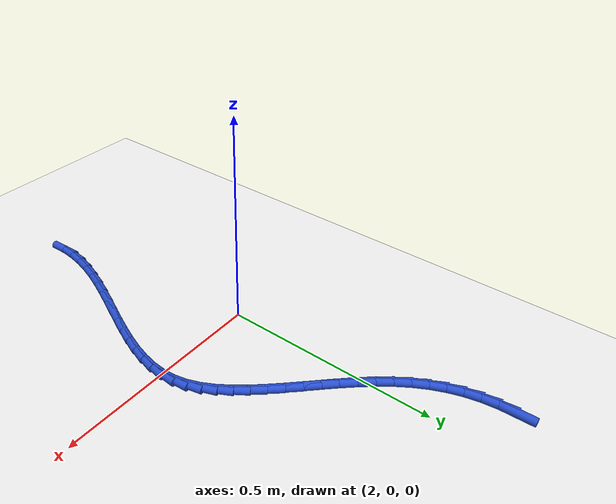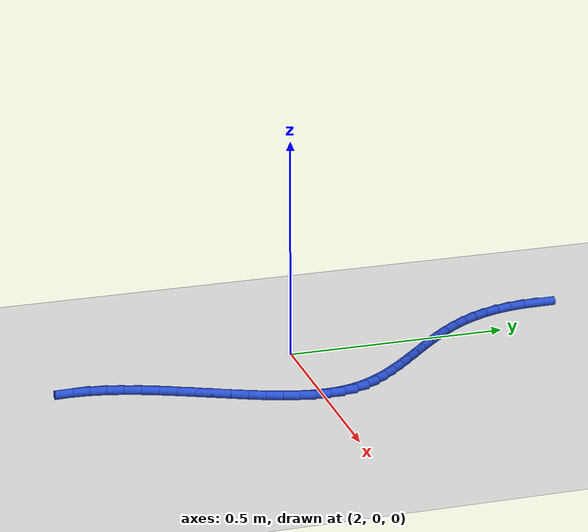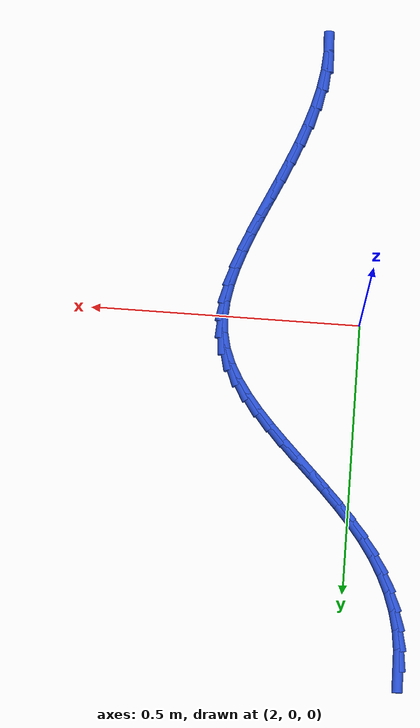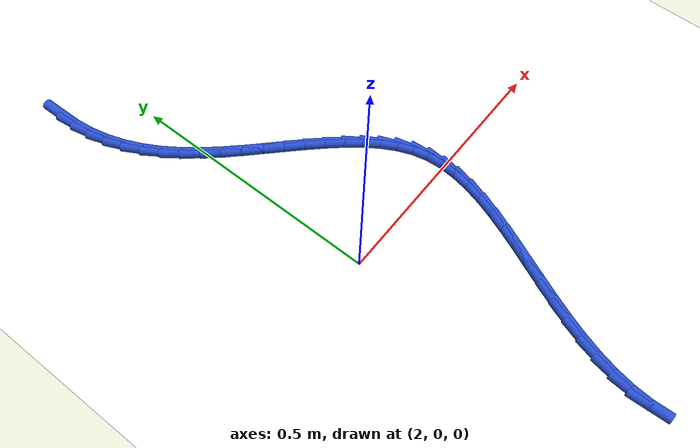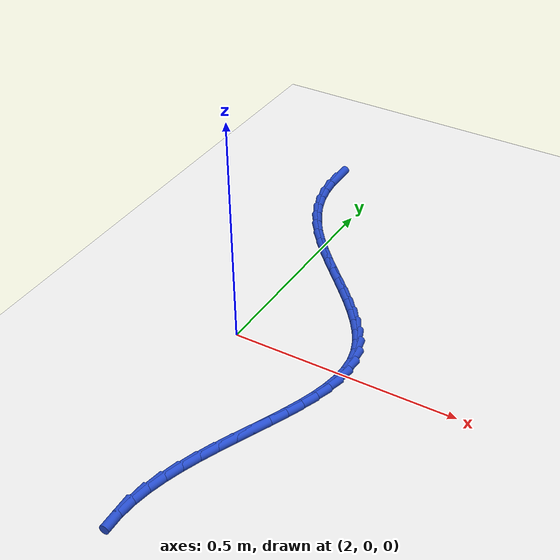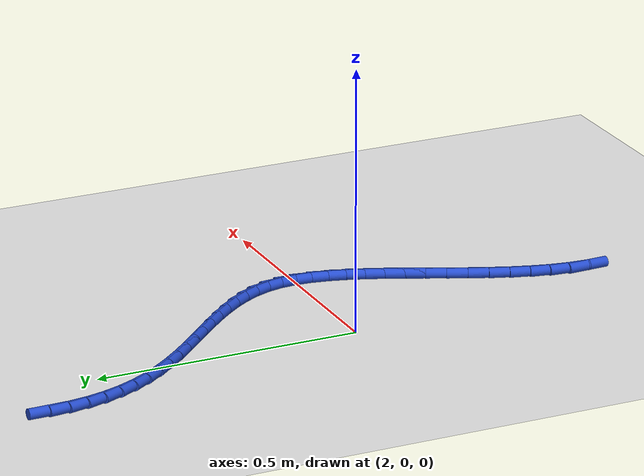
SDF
<sdf version="1.6">
 <world name="default">
  <model name="ground_plane">
   <static>1</static>
   <link name="link">
    <collision name="collision">
     <geometry><plane><normal>0 0 1</normal><size>100 100</size></plane></geometry>
     <surface><friction><ode><mu>100</mu><mu2>50</mu2></ode></friction></surface>
    </collision>
    <visual name="visual">
     <cast_shadows>0</cast_shadows>
     <geometry><plane><normal>0 0 1</normal><size>100 100</size></plane></geometry>
     <material>
      <script><uri>file://media/materials/scripts/gazebo.material</uri><name>Gazebo/WhiteGlow</name></script>
     </material>
    </visual>
   </link>
  </model>
  <model name="line">
   <link name="link_94">
    <pose>1.8905877723139377 0.6322165702435564 0.01 0 1.57 -1.5479605333272455</pose>
    <collision name="collision">
     <geometry><cylinder><radius>0.01</radius><length>0.08</length></cylinder></geometry>
    </collision>
    <visual name="visual">
     <material>
      <script><name>Gazebo/Blue</name><uri>file://media/materials/scripts/gazebo.material</uri></script>
     </material>
     <geometry><cylinder><radius>0.01</radius><length>0.08</length></cylinder></geometry>
    </visual>
   </link>
   <link name="link_95">
    <pose>1.891432547540415 0.5952295314551933 0.01 0 1.57 -1.4419908986044163</pose>
    <collision name="collision">
     <geometry><cylinder><radius>0.01</radius><length>0.08</length></cylinder></geometry>
    </collision>
    <visual name="visual">
     <material>
      <script><name>Gazebo/Blue</name><uri>file://media/materials/scripts/gazebo.material</uri></script>
     </material>
     <geometry><cylinder><radius>0.01</radius><length>0.08</length></cylinder></geometry>
    </visual>
   </link>
   <link name="link_96">
    <pose>1.896062959654958 0.5594796695264206 0.01 0 1.57 -1.337098558686547</pose>
    <collision name="collision">
     <geometry><cylinder><radius>0.01</radius><length>0.08</length></cylinder></geometry>
    </collision>
    <visual name="visual">
     <material>
      <script><name>Gazebo/Blue</name><uri>file://media/materials/scripts/gazebo.material</uri></script>
     </material>
     <geometry><cylinder><radius>0.01</radius><length>0.08</length></cylinder></geometry>
    </visual>
   </link>
   <link name="link_97">
    <pose>1.9042903463125511 0.5249176798036582 0.01 0 1.57 -1.2357883247975958</pose>
    <collision name="collision">
     <geometry><cylinder><radius>0.01</radius><length>0.08</length></cylinder></geometry>
    </collision>
    <visual name="visual">
     <material>
      <script><name>Gazebo/Blue</name><uri>file://media/materials/scripts/gazebo.material</uri></script>
     </material>
     <geometry><cylinder><radius>0.01</radius><length>0.08</length></cylinder></geometry>
    </visual>
   </link>
   <link name="link_98">
    <pose>1.9159260451681828 0.49149425763332716 0.01 0 1.57 -1.1401264569196978</pose>
    <collision name="collision">
     <geometry><cylinder><radius>0.01</radius><length>0.08</length></cylinder></geometry>
    </collision>
    <visual name="visual">
     <material>
      <script><name>Gazebo/Blue</name><uri>file://media/materials/scripts/gazebo.material</uri></script>
     </material>
     <geometry><cylinder><radius>0.01</radius><length>0.08</length></cylinder></geometry>
    </visual>
   </link>
   <link name="link_99">
    <pose>1.930781393876838 0.45916009836184846 0.01 0 1.57 -1.0515554122687267</pose>
    <collision name="collision">
     <geometry><cylinder><radius>0.01</radius><length>0.08</length></cylinder></geometry>
    </collision>
    <visual name="visual">
     <material>
      <script><name>Gazebo/Blue</name><uri>file://media/materials/scripts/gazebo.material</uri></script>
     </material>
     <geometry><cylinder><radius>0.01</radius><length>0.08</length></cylinder></geometry>
    </visual>
   </link>
   <link name="link_100">
    <pose>1.9486677300935047 0.42786589733564245 0.01 0 1.57 -0.970891354511075</pose>
    <collision name="collision">
     <geometry><cylinder><radius>0.01</radius><length>0.08</length></cylinder></geometry>
    </collision>
    <visual name="visual">
     <material>
      <script><name>Gazebo/Blue</name><uri>file://media/materials/scripts/gazebo.material</uri></script>
     </material>
     <geometry><cylinder><radius>0.01</radius><length>0.08</length></cylinder></geometry>
    </visual>
   </link>
   <link name="link_101">
    <pose>1.9693954280994446 0.3975621262191491 0.01 0 1.57 -0.9015173392978795</pose>
    <collision name="collision">
     <geometry><cylinder><radius>0.01</radius><length>0.08</length></cylinder></geometry>
    </collision>
    <visual name="visual">
     <material>
      <script><name>Gazebo/Blue</name><uri>file://media/materials/scripts/gazebo.material</uri></script>
     </material>
     <geometry><cylinder><radius>0.01</radius><length>0.08</length></cylinder></geometry>
    </visual>
   </link>
   <link name="link_102">
    <pose>1.992647278704343 0.3681696335689657 0.01 0 1.57 -0.8487508781329587</pose>
    <collision name="collision">
     <geometry><cylinder><radius>0.01</radius><length>0.08</length></cylinder></geometry>
    </collision>
    <visual name="visual">
     <material>
      <script><name>Gazebo/Blue</name><uri>file://media/materials/scripts/gazebo.material</uri></script>
     </material>
     <geometry><cylinder><radius>0.01</radius><length>0.08</length></cylinder></geometry>
    </visual>
   </link>
   <link name="link_103">
    <pose>2.017852129335109 0.3395503058197125 0.01 0 1.57 -0.8116921284530113</pose>
    <collision name="collision">
     <geometry><cylinder><radius>0.01</radius><length>0.08</length></cylinder></geometry>
    </collision>
    <visual name="visual">
     <material>
      <script><name>Gazebo/Blue</name><uri>file://media/materials/scripts/gazebo.material</uri></script>
     </material>
     <geometry><cylinder><radius>0.01</radius><length>0.08</length></cylinder></geometry>
    </visual>
   </link>
   <link name="link_104">
    <pose>2.044408772842709 0.31155905115143295 0.01 0 1.57 -0.7890657986596465</pose>
    <collision name="collision">
     <geometry><cylinder><radius>0.01</radius><length>0.08</length></cylinder></geometry>
    </collision>
    <visual name="visual">
     <material>
      <script><name>Gazebo/Blue</name><uri>file://media/materials/scripts/gazebo.material</uri></script>
     </material>
     <geometry><cylinder><radius>0.01</radius><length>0.08</length></cylinder></geometry>
    </visual>
   </link>
   <link name="link_105">
    <pose>2.07171600207811 0.28405077774417214 0.01 0 1.57 -0.7801586065518898</pose>
    <collision name="collision">
     <geometry><cylinder><radius>0.01</radius><length>0.08</length></cylinder></geometry>
    </collision>
    <visual name="visual">
     <material>
      <script><name>Gazebo/Blue</name><uri>file://media/materials/scripts/gazebo.material</uri></script>
     </material>
     <geometry><cylinder><radius>0.01</radius><length>0.08</length></cylinder></geometry>
    </visual>
   </link>
   <link name="link_106">
    <pose>2.0991726098922787 0.25688039377797356 0.01 0 1.57 -0.7848944267379606</pose>
    <collision name="collision">
     <geometry><cylinder><radius>0.01</radius><length>0.08</length></cylinder></geometry>
    </collision>
    <visual name="visual">
     <material>
      <script><name>Gazebo/Blue</name><uri>file://media/materials/scripts/gazebo.material</uri></script>
     </material>
     <geometry><cylinder><radius>0.01</radius><length>0.08</length></cylinder></geometry>
    </visual>
   </link>
   <link name="link_107">
    <pose>2.126177389136183 0.22990280743288236 0.01 0 1.57 -0.8038927824601616</pose>
    <collision name="collision">
     <geometry><cylinder><radius>0.01</radius><length>0.08</length></cylinder></geometry>
    </collision>
    <visual name="visual">
     <material>
      <script><name>Gazebo/Blue</name><uri>file://media/materials/scripts/gazebo.material</uri></script>
     </material>
     <geometry><cylinder><radius>0.01</radius><length>0.08</length></cylinder></geometry>
    </visual>
   </link>
   <link name="link_108">
    <pose>2.1521291326607876 0.20297292688894208 0.01 0 1.57 -0.838534231204406</pose>
    <collision name="collision">
     <geometry><cylinder><radius>0.01</radius><length>0.08</length></cylinder></geometry>
    </collision>
    <visual name="visual">
     <material>
      <script><name>Gazebo/Blue</name><uri>file://media/materials/scripts/gazebo.material</uri></script>
     </material>
     <geometry><cylinder><radius>0.01</radius><length>0.08</length></cylinder></geometry>
    </visual>
   </link>
   <link name="link_109">
    <pose>2.176426633317061 0.1759456603261976 0.01 0 1.57 -0.8910167175887135</pose>
    <collision name="collision">
     <geometry><cylinder><radius>0.01</radius><length>0.08</length></cylinder></geometry>
    </collision>
    <visual name="visual">
     <material>
      <script><name>Gazebo/Blue</name><uri>file://media/materials/scripts/gazebo.material</uri></script>
     </material>
     <geometry><cylinder><radius>0.01</radius><length>0.08</length></cylinder></geometry>
    </visual>
   </link>
   <link name="link_110">
    <pose>2.19846868395597 0.1486759159246926 0.01 0 1.57 -0.9643229224809154</pose>
    <collision name="collision">
     <geometry><cylinder><radius>0.01</radius><length>0.08</length></cylinder></geometry>
    </collision>
    <visual name="visual">
     <material>
      <script><name>Gazebo/Blue</name><uri>file://media/materials/scripts/gazebo.material</uri></script>
     </material>
     <geometry><cylinder><radius>0.01</radius><length>0.08</length></cylinder></geometry>
    </visual>
   </link>
   <link name="link_111">
    <pose>2.2176540774284805 0.12101860186447205 0.01 0 1.57 -1.0618988493154864</pose>
    <collision name="collision">
     <geometry><cylinder><radius>0.01</radius><length>0.08</length></cylinder></geometry>
    </collision>
    <visual name="visual">
     <material>
      <script><name>Gazebo/Blue</name><uri>file://media/materials/scripts/gazebo.material</uri></script>
     </material>
     <geometry><cylinder><radius>0.01</radius><length>0.08</length></cylinder></geometry>
    </visual>
   </link>
   <link name="link_112">
    <pose>2.23338160658556 0.09282862632557995 0.01 0 1.57 -1.1866708883223838</pose>
    <collision name="collision">
     <geometry><cylinder><radius>0.01</radius><length>0.08</length></cylinder></geometry>
    </collision>
    <visual name="visual">
     <material>
      <script><name>Gazebo/Blue</name><uri>file://media/materials/scripts/gazebo.material</uri></script>
     </material>
     <geometry><cylinder><radius>0.01</radius><length>0.08</length></cylinder></geometry>
    </visual>
   </link>
   <link name="link_113">
    <pose>2.245050064278175 0.0639608974880605 0.01 0 1.57 -1.3386264060801076</pose>
    <collision name="collision">
     <geometry><cylinder><radius>0.01</radius><length>0.08</length></cylinder></geometry>
    </collision>
    <visual name="visual">
     <material>
      <script><name>Gazebo/Blue</name><uri>file://media/materials/scripts/gazebo.material</uri></script>
     </material>
     <geometry><cylinder><radius>0.01</radius><length>0.08</length></cylinder></geometry>
    </visual>
   </link>
   <link name="link_114">
    <pose>2.252069439188717 0.03427230630429456 0.01 0 1.57 -1.4972608655554038</pose>
    <collision name="collision">
     <geometry><cylinder><radius>0.01</radius><length>0.08</length></cylinder></geometry>
    </collision>
    <visual name="visual">
     <material>
      <script><name>Gazebo/Blue</name><uri>file://media/materials/scripts/gazebo.material</uri></script>
     </material>
     <geometry><cylinder><radius>0.01</radius><length>0.08</length></cylinder></geometry>
    </visual>
   </link>
   <link name="link_115">
    <pose>2.254321407309562 0.003703279152908267 0.01 0 1.57 1.5072109366723512</pose>
    <collision name="collision">
     <geometry><cylinder><radius>0.01</radius><length>0.08</length></cylinder></geometry>
    </collision>
    <visual name="visual">
     <material>
      <script><name>Gazebo/Blue</name><uri>file://media/materials/scripts/gazebo.material</uri></script>
     </material>
     <geometry><cylinder><radius>0.01</radius><length>0.08</length></cylinder></geometry>
    </visual>
   </link>
   <link name="link_116">
    <pose>2.252322345366223 -0.027693352620971955 0.01 0 1.57 1.3957290457621503</pose>
    <collision name="collision">
     <geometry><cylinder><radius>0.01</radius><length>0.08</length></cylinder></geometry>
    </collision>
    <visual name="visual">
     <material>
      <script><name>Gazebo/Blue</name><uri>file://media/materials/scripts/gazebo.material</uri></script>
     </material>
     <geometry><cylinder><radius>0.01</radius><length>0.08</length></cylinder></geometry>
    </visual>
   </link>
   <link name="link_117">
    <pose>2.246633331788727 -0.059856841037911716 0.01 0 1.57 1.3086987814725404</pose>
    <collision name="collision">
     <geometry><cylinder><radius>0.01</radius><length>0.08</length></cylinder></geometry>
    </collision>
    <visual name="visual">
     <material>
      <script><name>Gazebo/Blue</name><uri>file://media/materials/scripts/gazebo.material</uri></script>
     </material>
     <geometry><cylinder><radius>0.01</radius><length>0.08</length></cylinder></geometry>
    </visual>
   </link>
   <link name="link_118">
    <pose>2.2378154450070986 -0.09272643811847738 0.01 0 1.57 1.2433093596702367</pose>
    <collision name="collision">
     <geometry><cylinder><radius>0.01</radius><length>0.08</length></cylinder></geometry>
    </collision>
    <visual name="visual">
     <material>
      <script><name>Gazebo/Blue</name><uri>file://media/materials/scripts/gazebo.material</uri></script>
     </material>
     <geometry><cylinder><radius>0.01</radius><length>0.08</length></cylinder></geometry>
    </visual>
   </link>
   <link name="link_119">
    <pose>2.2264297634513666 -0.12624139588323302 0.01 0 1.57 1.1965608266958456</pose>
    <collision name="collision">
     <geometry><cylinder><radius>0.01</radius><length>0.08</length></cylinder></geometry>
    </collision>
    <visual name="visual">
     <material>
      <script><name>Gazebo/Blue</name><uri>file://media/materials/scripts/gazebo.material</uri></script>
     </material>
     <geometry><cylinder><radius>0.01</radius><length>0.08</length></cylinder></geometry>
    </visual>
   </link>
   <link name="link_120">
    <pose>2.2130373655515565 -0.16034096635274497 0.01 0 1.57 1.1659186750384332</pose>
    <collision name="collision">
     <geometry><cylinder><radius>0.01</radius><length>0.08</length></cylinder></geometry>
    </collision>
    <visual name="visual">
     <material>
      <script><name>Gazebo/Blue</name><uri>file://media/materials/scripts/gazebo.material</uri></script>
     </material>
     <geometry><cylinder><radius>0.01</radius><length>0.08</length></cylinder></geometry>
    </visual>
   </link>
   <link name="link_121">
    <pose>2.1981993297376956 -0.19496440154757896 0.01 0 1.57 1.1495161747142264</pose>
    <collision name="collision">
     <geometry><cylinder><radius>0.01</radius><length>0.08</length></cylinder></geometry>
    </collision>
    <visual name="visual">
     <material>
      <script><name>Gazebo/Blue</name><uri>file://media/materials/scripts/gazebo.material</uri></script>
     </material>
     <geometry><cylinder><radius>0.01</radius><length>0.08</length></cylinder></geometry>
    </visual>
   </link>
   <link name="link_122">
    <pose>2.18247673443981 -0.2300509534883014 0.01 0 1.57 1.146161492969681</pose>
    <collision name="collision">
     <geometry><cylinder><radius>0.01</radius><length>0.08</length></cylinder></geometry>
    </collision>
    <visual name="visual">
     <material>
      <script><name>Gazebo/Blue</name><uri>file://media/materials/scripts/gazebo.material</uri></script>
     </material>
     <geometry><cylinder><radius>0.01</radius><length>0.08</length></cylinder></geometry>
    </visual>
   </link>
   <link name="link_123">
    <pose>2.1664306580879273 -0.2655398741954761 0.01 0 1.57 1.155283505638143</pose>
    <collision name="collision">
     <geometry><cylinder><radius>0.01</radius><length>0.08</length></cylinder></geometry>
    </collision>
    <visual name="visual">
     <material>
      <script><name>Gazebo/Blue</name><uri>file://media/materials/scripts/gazebo.material</uri></script>
     </material>
     <geometry><cylinder><radius>0.01</radius><length>0.08</length></cylinder></geometry>
    </visual>
   </link>
   <link name="link_124">
    <pose>2.1506221791120734 -0.30137041568966966 0.01 0 1.57 1.1768695766346333</pose>
    <collision name="collision">
     <geometry><cylinder><radius>0.01</radius><length>0.08</length></cylinder></geometry>
    </collision>
    <visual name="visual">
     <material>
      <script><name>Gazebo/Blue</name><uri>file://media/materials/scripts/gazebo.material</uri></script>
     </material>
     <geometry><cylinder><radius>0.01</radius><length>0.08</length></cylinder></geometry>
    </visual>
   </link>
   <link name="link_125">
    <pose>2.1356123759422756 -0.3374818299914476 0.01 0 1.57 1.2114051121121077</pose>
    <collision name="collision">
     <geometry><cylinder><radius>0.01</radius><length>0.08</length></cylinder></geometry>
    </collision>
    <visual name="visual">
     <material>
      <script><name>Gazebo/Blue</name><uri>file://media/materials/scripts/gazebo.material</uri></script>
     </material>
     <geometry><cylinder><radius>0.01</radius><length>0.08</length></cylinder></geometry>
    </visual>
   </link>
   <link name="link_126">
    <pose>2.1219623270085592 -0.37381336912137647 0.01 0 1.57 1.2597982132375045</pose>
    <collision name="collision">
     <geometry><cylinder><radius>0.01</radius><length>0.08</length></cylinder></geometry>
    </collision>
    <visual name="visual">
     <material>
      <script><name>Gazebo/Blue</name><uri>file://media/materials/scripts/gazebo.material</uri></script>
     </material>
     <geometry><cylinder><radius>0.01</radius><length>0.08</length></cylinder></geometry>
    </visual>
   </link>
   <link name="link_127">
    <pose>2.110233110740953 -0.41030428510002004 0.01 0 1.57 1.3232491490674312</pose>
    <collision name="collision">
     <geometry><cylinder><radius>0.01</radius><length>0.08</length></cylinder></geometry>
    </collision>
    <visual name="visual">
     <material>
      <script><name>Gazebo/Blue</name><uri>file://media/materials/scripts/gazebo.material</uri></script>
     </material>
     <geometry><cylinder><radius>0.01</radius><length>0.08</length></cylinder></geometry>
    </visual>
   </link>
   <link name="link_128">
    <pose>2.1009858055694823 -0.4468938299479449 0.01 0 1.57 1.4029992016776656</pose>
    <collision name="collision">
     <geometry><cylinder><radius>0.01</radius><length>0.08</length></cylinder></geometry>
    </collision>
    <visual name="visual">
     <material>
      <script><name>Gazebo/Blue</name><uri>file://media/materials/scripts/gazebo.material</uri></script>
     </material>
     <geometry><cylinder><radius>0.01</radius><length>0.08</length></cylinder></geometry>
    </visual>
   </link>
   <link name="link_129">
    <pose>2.0947814899241743 -0.4835212556857167 0.01 0 1.57 1.4998792813816813</pose>
    <collision name="collision">
     <geometry><cylinder><radius>0.01</radius><length>0.08</length></cylinder></geometry>
    </collision>
    <visual name="visual">
     <material>
      <script><name>Gazebo/Blue</name><uri>file://media/materials/scripts/gazebo.material</uri></script>
     </material>
     <geometry><cylinder><radius>0.01</radius><length>0.08</length></cylinder></geometry>
    </visual>
   </link>
   <link name="link_130">
    <pose>2.0921812422350556 -0.5201258143339009 0.01 0 1.57 -1.5279731726073535</pose>
    <collision name="collision">
     <geometry><cylinder><radius>0.01</radius><length>0.08</length></cylinder></geometry>
    </collision>
    <visual name="visual">
     <material>
      <script><name>Gazebo/Blue</name><uri>file://media/materials/scripts/gazebo.material</uri></script>
     </material>
     <geometry><cylinder><radius>0.01</radius><length>0.08</length></cylinder></geometry>
    </visual>
   </link>
  </model>
 </world>
</sdf>
